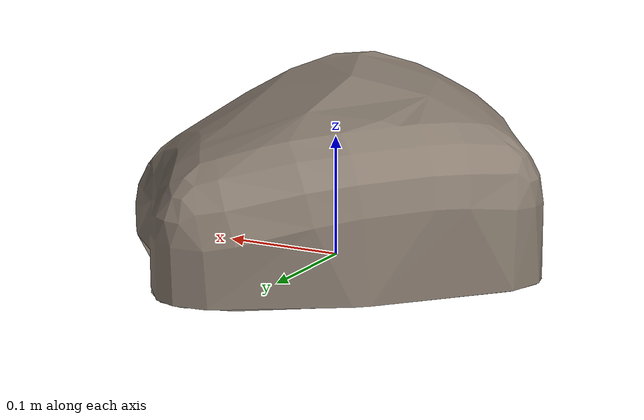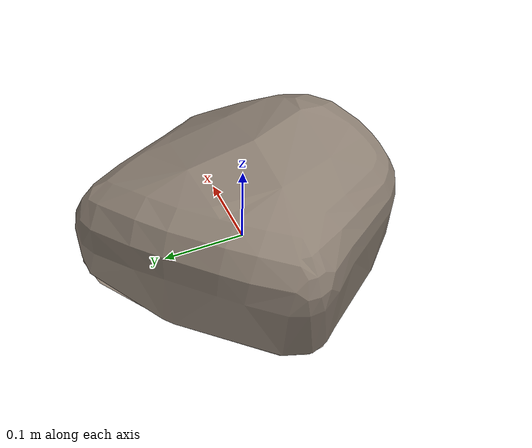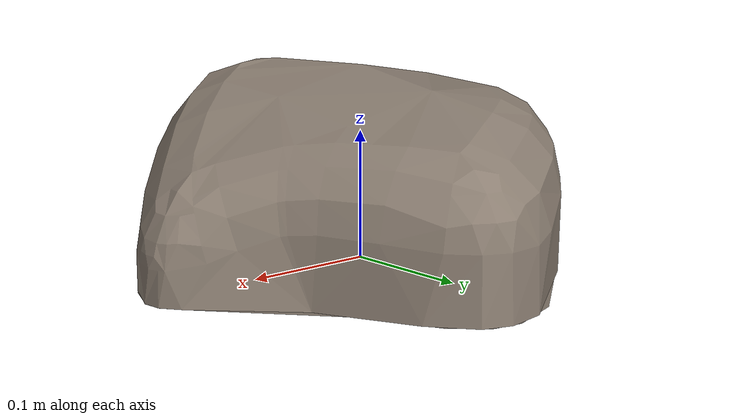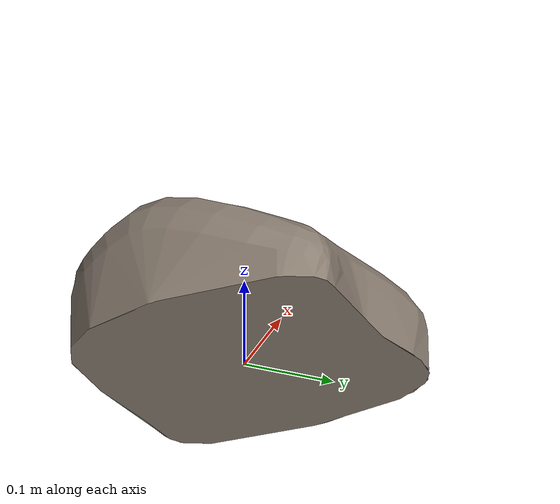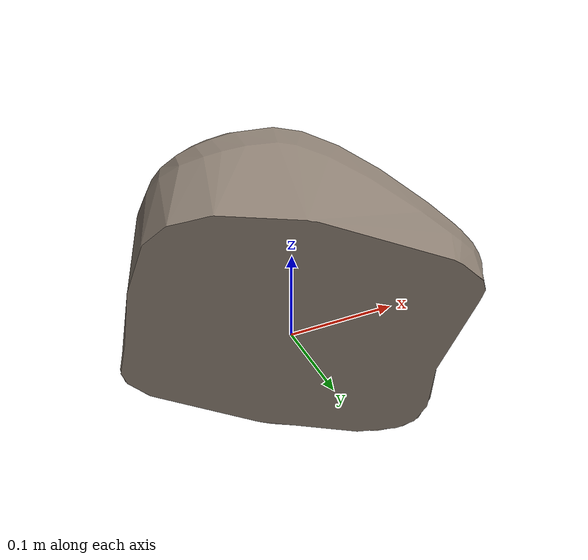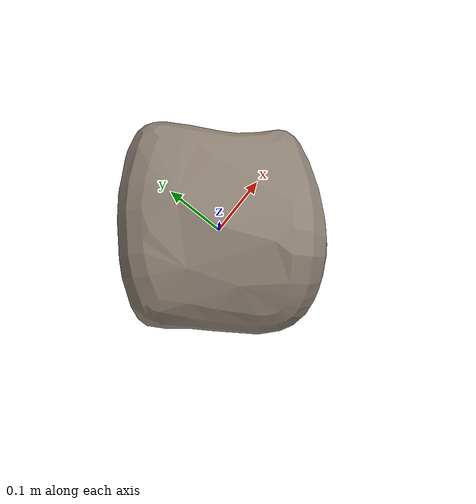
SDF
<?xml version="1.0" ?>
<sdf version="1.8">
  <model name="rock_small">
    <static>true</static>
    <link name="rock_link">
      <visual name="visual">
        <geometry>
          <mesh>
            <uri>model://rock_small/meshes/rock_small.stl</uri>
          </mesh>
        </geometry>
        <material>
          <ambient>0.45 0.4 0.35 1</ambient>
          <diffuse>0.55 0.5 0.45 1</diffuse>
          <specular>0.2 0.2 0.2 1</specular>
        </material>
      </visual>
      <collision name="collision">
        <geometry>
          <mesh>
            <uri>model://rock_small/meshes/rock_small.stl</uri>
          </mesh>
        </geometry>
        <surface>
          <friction>
            <ode>
              <mu>0.8</mu>
              <mu2>0.8</mu2>
            </ode>
          </friction>
        </surface>
      </collision>
    </link>
  </model>
</sdf>
